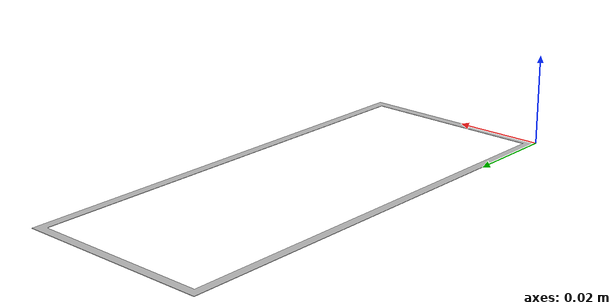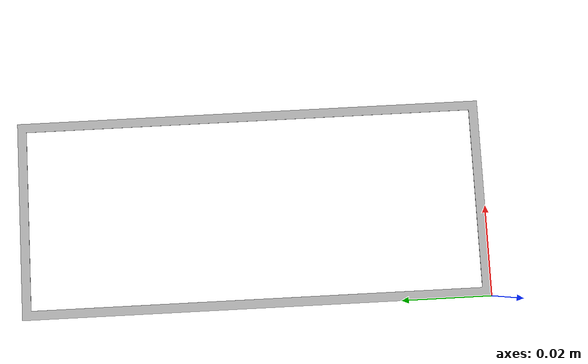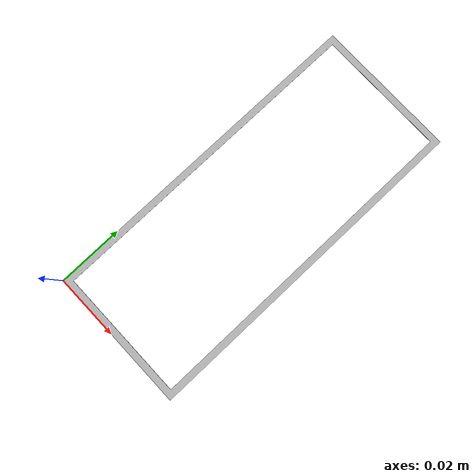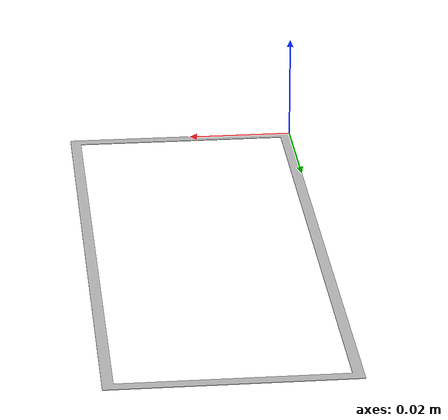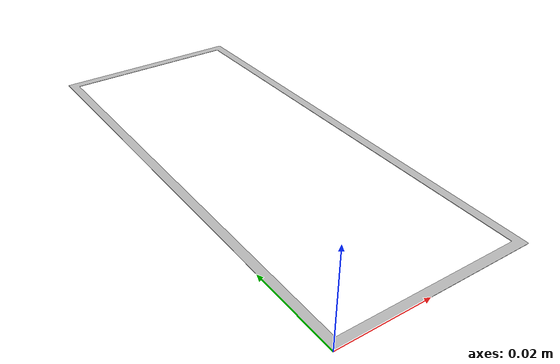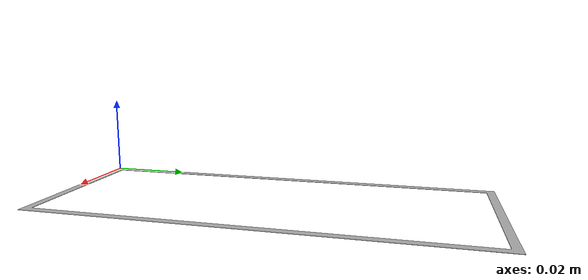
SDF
<?xml version="1.0" ?>
<sdf version="1.4">
  <model name="beam_weld_rectangle">
    <static>true</static>
    <link name="link">
      <inertial>
        <mass>1000</mass>
      </inertial>
      <collision name="collision">
        <geometry>
          <mesh>
            <uri>model://beam_weld_rectangle/meshes/beam_weld_rectangle.stl</uri>
          </mesh>
        </geometry>
      </collision>
      <visual name="visual">
        <transparency>0.0</transparency>
        <geometry>
          <mesh>
            <uri>model://beam_weld_rectangle/meshes/beam_weld_rectangle.stl</uri>
          </mesh>
        </geometry>
      </visual>
    </link>
  </model>
</sdf>
